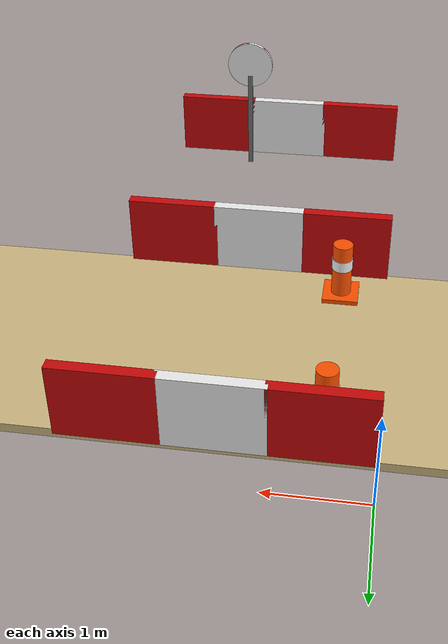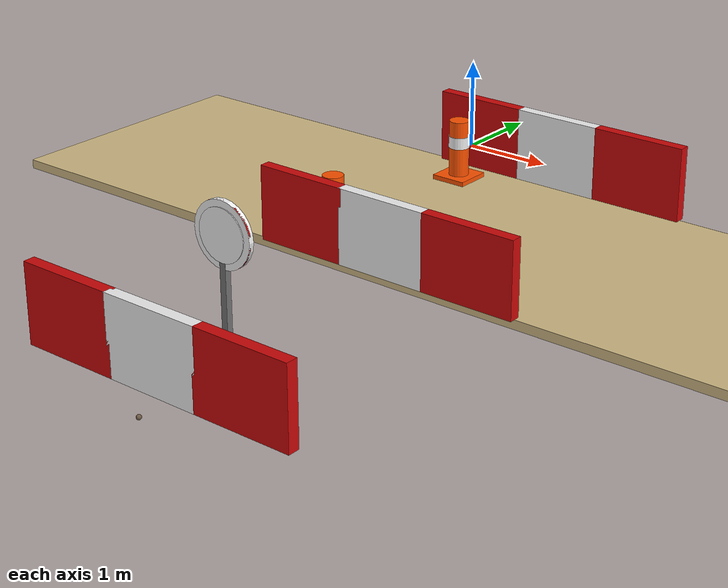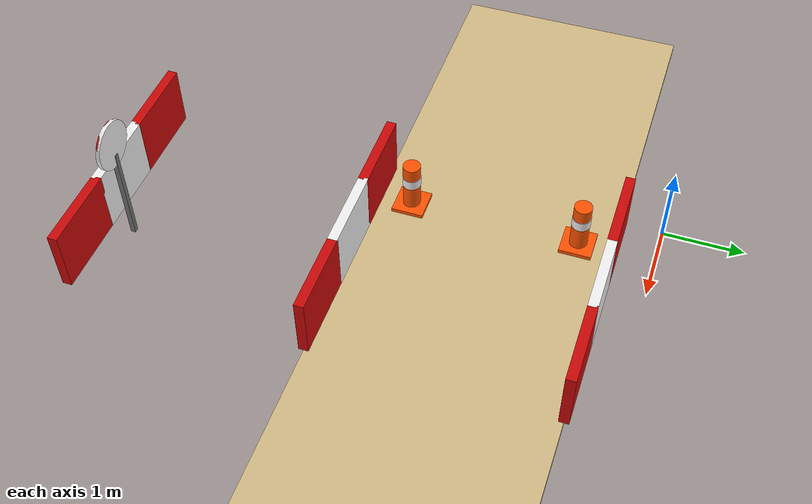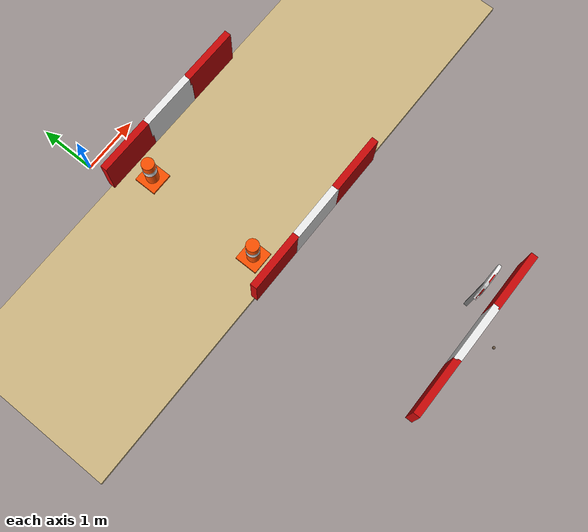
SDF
<sdf version="1.6">
 <world name="evrenos_teknofest_2026">
  <include><uri>model://sun</uri></include>
  <model name="main_course">
   <static>true</static>
   <link name="gravel_23">
    <pose>1.6899 -6.8834 0.0137 0 0 0</pose>
    <collision name="gravel_23_collision">
     <geometry><sphere><radius>0.0248</radius></sphere></geometry>
    </collision>
    <visual name="gravel_23_visual">
     <geometry><sphere><radius>0.0248</radius></sphere></geometry>
     <material><ambient>0.43 0.35 0.27 1</ambient><diffuse>0.43 0.35 0.27 1</diffuse></material>
    </visual>
   </link>
   <link name="middle_0">
    <pose>0.0000 -2.0000 -0.0500 0.000000 0.000000 0.000000</pose>
    <collision name="middle_0_collision">
     <geometry><box><size>20.0000 3.0000 0.1000</size></box></geometry>
    </collision>
    <visual name="middle_0_visual">
     <geometry><box><size>20.0000 3.0000 0.1000</size></box></geometry>
     <material><ambient>0.82 0.73 0.52 1</ambient><diffuse>0.82 0.73 0.52 1</diffuse></material>
    </visual>
   </link>
   <link name="cone_base_6">
    <pose>0.5000 -3.0625 0.0250 0.000000 0.000000 0.000000</pose>
    <collision name="cone_base_6_collision">
     <geometry><box><size>0.4000 0.4000 0.0500</size></box></geometry>
    </collision>
    <visual name="cone_base_6_visual">
     <geometry><box><size>0.4000 0.4000 0.0500</size></box></geometry>
     <material><ambient>1.0 0.32 0.0 1</ambient><diffuse>1.0 0.32 0.0 1</diffuse></material>
    </visual>
   </link>
   <link name="cone_orange_6">
    <pose>0.5000 -3.0625 0.3600 0.000000 0.000000 0.000000</pose>
    <collision name="cone_orange_6_collision">
     <geometry><cylinder><radius>0.1100</radius><length>0.6200</length></cylinder></geometry>
    </collision>
    <visual name="cone_orange_6_visual">
     <geometry><cylinder><radius>0.1100</radius><length>0.6200</length></cylinder></geometry>
     <material><ambient>1.0 0.32 0.0 1</ambient><diffuse>1.0 0.32 0.0 1</diffuse></material>
    </visual>
   </link>
   <link name="cone_white_6">
    <pose>0.5000 -3.0625 0.4300 0.000000 0.000000 0.000000</pose>
    <collision name="cone_white_6_collision">
     <geometry><cylinder><radius>0.1150</radius><length>0.1300</length></cylinder></geometry>
    </collision>
    <visual name="cone_white_6_visual">
     <geometry><cylinder><radius>0.1150</radius><length>0.1300</length></cylinder></geometry>
     <material><ambient>0.95 0.95 0.95 1</ambient><diffuse>0.95 0.95 0.95 1</diffuse></material>
    </visual>
   </link>
   <link name="cone_base_7">
    <pose>0.5000 -0.9375 0.0250 0.000000 0.000000 0.000000</pose>
    <collision name="cone_base_7_collision">
     <geometry><box><size>0.4000 0.4000 0.0500</size></box></geometry>
    </collision>
    <visual name="cone_base_7_visual">
     <geometry><box><size>0.4000 0.4000 0.0500</size></box></geometry>
     <material><ambient>1.0 0.32 0.0 1</ambient><diffuse>1.0 0.32 0.0 1</diffuse></material>
    </visual>
   </link>
   <link name="cone_orange_7">
    <pose>0.5000 -0.9375 0.3600 0.000000 0.000000 0.000000</pose>
    <collision name="cone_orange_7_collision">
     <geometry><cylinder><radius>0.1100</radius><length>0.6200</length></cylinder></geometry>
    </collision>
    <visual name="cone_orange_7_visual">
     <geometry><cylinder><radius>0.1100</radius><length>0.6200</length></cylinder></geometry>
     <material><ambient>1.0 0.32 0.0 1</ambient><diffuse>1.0 0.32 0.0 1</diffuse></material>
    </visual>
   </link>
   <link name="cone_white_7">
    <pose>0.5000 -0.9375 0.4300 0.000000 0.000000 0.000000</pose>
    <collision name="cone_white_7_collision">
     <geometry><cylinder><radius>0.1150</radius><length>0.1300</length></cylinder></geometry>
    </collision>
    <visual name="cone_white_7_visual">
     <geometry><cylinder><radius>0.1150</radius><length>0.1300</length></cylinder></geometry>
     <material><ambient>0.95 0.95 0.95 1</ambient><diffuse>0.95 0.95 0.95 1</diffuse></material>
    </visual>
   </link>
   <link name="bottom_bar_1_10">
    <pose>0.5000 -6.5000 0.4000 0.000000 0.000000 0.000000</pose>
    <collision name="bottom_bar_1_10_collision">
     <geometry><box><size>1.0300 0.1200 0.8000</size></box></geometry>
    </collision>
    <visual name="bottom_bar_1_10_visual">
     <geometry><box><size>1.0300 0.1200 0.8000</size></box></geometry>
     <material><ambient>0.8 0.03 0.03 1</ambient><diffuse>0.8 0.03 0.03 1</diffuse></material>
    </visual>
   </link>
   <link name="bottom_bar_1_11">
    <pose>1.5000 -6.5000 0.4000 0.000000 0.000000 0.000000</pose>
    <collision name="bottom_bar_1_11_collision">
     <geometry><box><size>1.0300 0.1200 0.8000</size></box></geometry>
    </collision>
    <visual name="bottom_bar_1_11_visual">
     <geometry><box><size>1.0300 0.1200 0.8000</size></box></geometry>
     <material><ambient>0.95 0.95 0.95 1</ambient><diffuse>0.95 0.95 0.95 1</diffuse></material>
    </visual>
   </link>
   <link name="bottom_bar_1_12">
    <pose>2.5000 -6.5000 0.4000 0.000000 0.000000 0.000000</pose>
    <collision name="bottom_bar_1_12_collision">
     <geometry><box><size>1.0300 0.1200 0.8000</size></box></geometry>
    </collision>
    <visual name="bottom_bar_1_12_visual">
     <geometry><box><size>1.0300 0.1200 0.8000</size></box></geometry>
     <material><ambient>0.8 0.03 0.03 1</ambient><diffuse>0.8 0.03 0.03 1</diffuse></material>
    </visual>
   </link>
   <link name="middle_bar_-1_10">
    <pose>0.5000 -3.5000 0.4000 0.000000 0.000000 0.000000</pose>
    <collision name="middle_bar_-1_10_collision">
     <geometry><box><size>1.0300 0.1200 0.8000</size></box></geometry>
    </collision>
    <visual name="middle_bar_-1_10_visual">
     <geometry><box><size>1.0300 0.1200 0.8000</size></box></geometry>
     <material><ambient>0.8 0.03 0.03 1</ambient><diffuse>0.8 0.03 0.03 1</diffuse></material>
    </visual>
   </link>
   <link name="middle_bar_-1_11">
    <pose>1.5000 -3.5000 0.4000 0.000000 0.000000 0.000000</pose>
    <collision name="middle_bar_-1_11_collision">
     <geometry><box><size>1.0300 0.1200 0.8000</size></box></geometry>
    </collision>
    <visual name="middle_bar_-1_11_visual">
     <geometry><box><size>1.0300 0.1200 0.8000</size></box></geometry>
     <material><ambient>0.95 0.95 0.95 1</ambient><diffuse>0.95 0.95 0.95 1</diffuse></material>
    </visual>
   </link>
   <link name="middle_bar_-1_12">
    <pose>2.5000 -3.5000 0.4000 0.000000 0.000000 0.000000</pose>
    <collision name="middle_bar_-1_12_collision">
     <geometry><box><size>1.0300 0.1200 0.8000</size></box></geometry>
    </collision>
    <visual name="middle_bar_-1_12_visual">
     <geometry><box><size>1.0300 0.1200 0.8000</size></box></geometry>
     <material><ambient>0.8 0.03 0.03 1</ambient><diffuse>0.8 0.03 0.03 1</diffuse></material>
    </visual>
   </link>
   <link name="middle_bar_1_10">
    <pose>0.5000 -0.5000 0.4000 0.000000 0.000000 0.000000</pose>
    <collision name="middle_bar_1_10_collision">
     <geometry><box><size>1.0300 0.1200 0.8000</size></box></geometry>
    </collision>
    <visual name="middle_bar_1_10_visual">
     <geometry><box><size>1.0300 0.1200 0.8000</size></box></geometry>
     <material><ambient>0.8 0.03 0.03 1</ambient><diffuse>0.8 0.03 0.03 1</diffuse></material>
    </visual>
   </link>
   <link name="middle_bar_1_11">
    <pose>1.5000 -0.5000 0.4000 0.000000 0.000000 0.000000</pose>
    <collision name="middle_bar_1_11_collision">
     <geometry><box><size>1.0300 0.1200 0.8000</size></box></geometry>
    </collision>
    <visual name="middle_bar_1_11_visual">
     <geometry><box><size>1.0300 0.1200 0.8000</size></box></geometry>
     <material><ambient>0.95 0.95 0.95 1</ambient><diffuse>0.95 0.95 0.95 1</diffuse></material>
    </visual>
   </link>
   <link name="middle_bar_1_12">
    <pose>2.5000 -0.5000 0.4000 0.000000 0.000000 0.000000</pose>
    <collision name="middle_bar_1_12_collision">
     <geometry><box><size>1.0300 0.1200 0.8000</size></box></geometry>
    </collision>
    <visual name="middle_bar_1_12_visual">
     <geometry><box><size>1.0300 0.1200 0.8000</size></box></geometry>
     <material><ambient>0.8 0.03 0.03 1</ambient><diffuse>0.8 0.03 0.03 1</diffuse></material>
    </visual>
   </link>
   <link name="stage2_post">
    <pose>2.0000 -6.1500 0.6500 0.000000 0.000000 0.000000</pose>
    <collision name="stage2_post_collision">
     <geometry><box><size>0.0600 0.0600 1.3000</size></box></geometry>
    </collision>
    <visual name="stage2_post_visual">
     <geometry><box><size>0.0600 0.0600 1.3000</size></box></geometry>
     <material><ambient>0.45 0.45 0.45 1</ambient><diffuse>0.45 0.45 0.45 1</diffuse></material>
    </visual>
   </link>
   <link name="stage2_disc">
    <pose>2.0000 -6.1500 1.4500 1.570796 0.000000 0.000000</pose>
    <visual name="stage2_disc_visual">
     <geometry><cylinder><radius>0.3000</radius><length>0.0500</length></cylinder></geometry>
     <material><ambient>0.95 0.95 0.95 1</ambient><diffuse>0.95 0.95 0.95 1</diffuse></material>
    </visual>
   </link>
   <link name="stage2_redring">
    <pose>2.0000 -6.1620 1.4500 1.570796 0.000000 0.000000</pose>
    <visual name="stage2_redring_visual">
     <geometry><cylinder><radius>0.3000</radius><length>0.0180</length></cylinder></geometry>
     <material><ambient>0.8 0.03 0.03 1</ambient><diffuse>0.8 0.03 0.03 1</diffuse></material>
    </visual>
   </link>
   <link name="stage2_inner">
    <pose>2.0000 -6.1740 1.4500 1.570796 0.000000 0.000000</pose>
    <visual name="stage2_inner_visual">
     <geometry><cylinder><radius>0.2400</radius><length>0.0200</length></cylinder></geometry>
     <material><ambient>0.95 0.95 0.95 1</ambient><diffuse>0.95 0.95 0.95 1</diffuse></material>
    </visual>
   </link>
  </model>
 </world>
</sdf>
